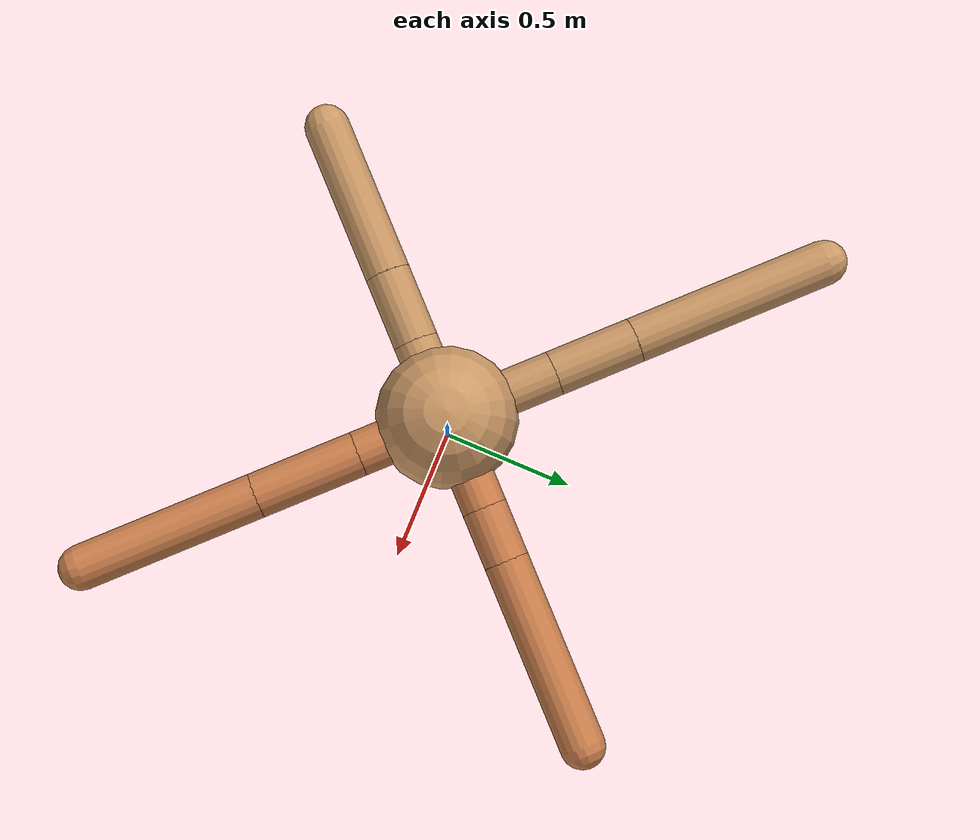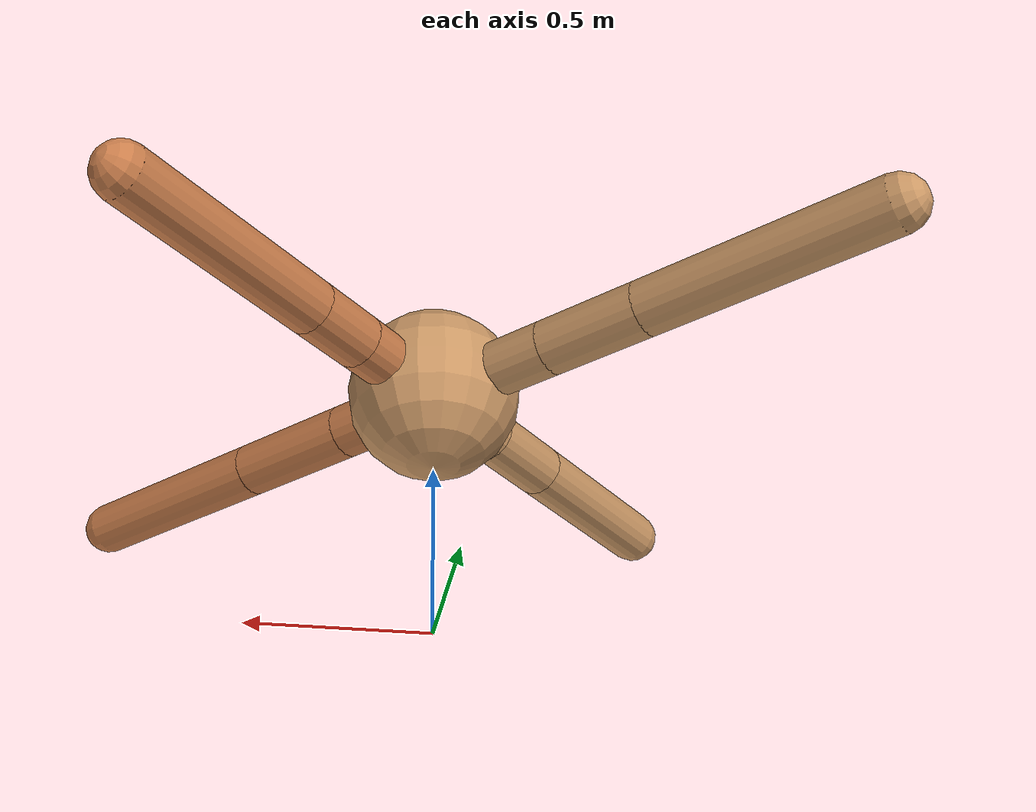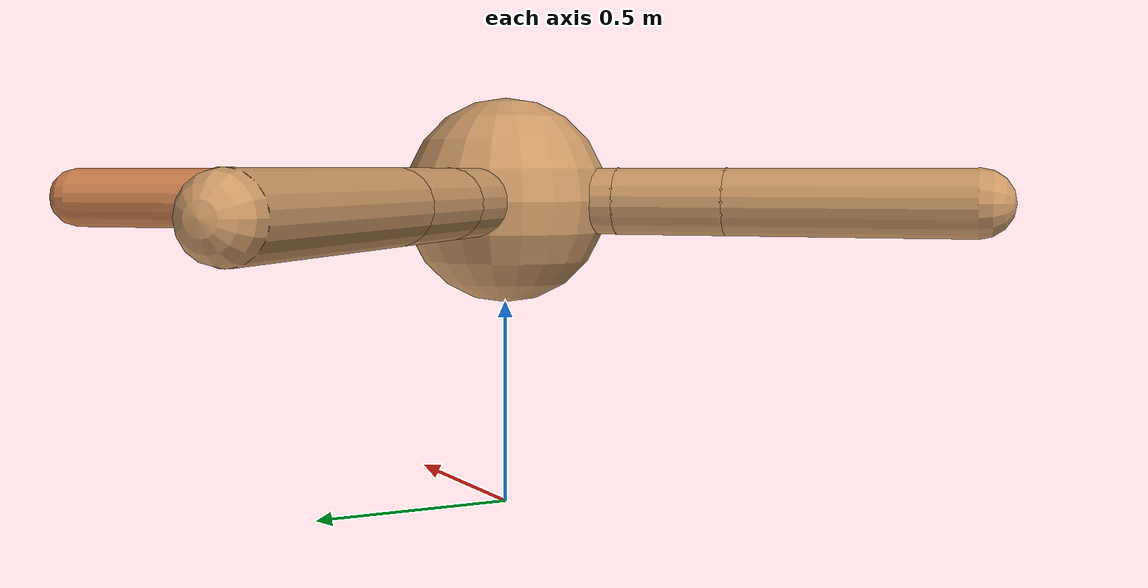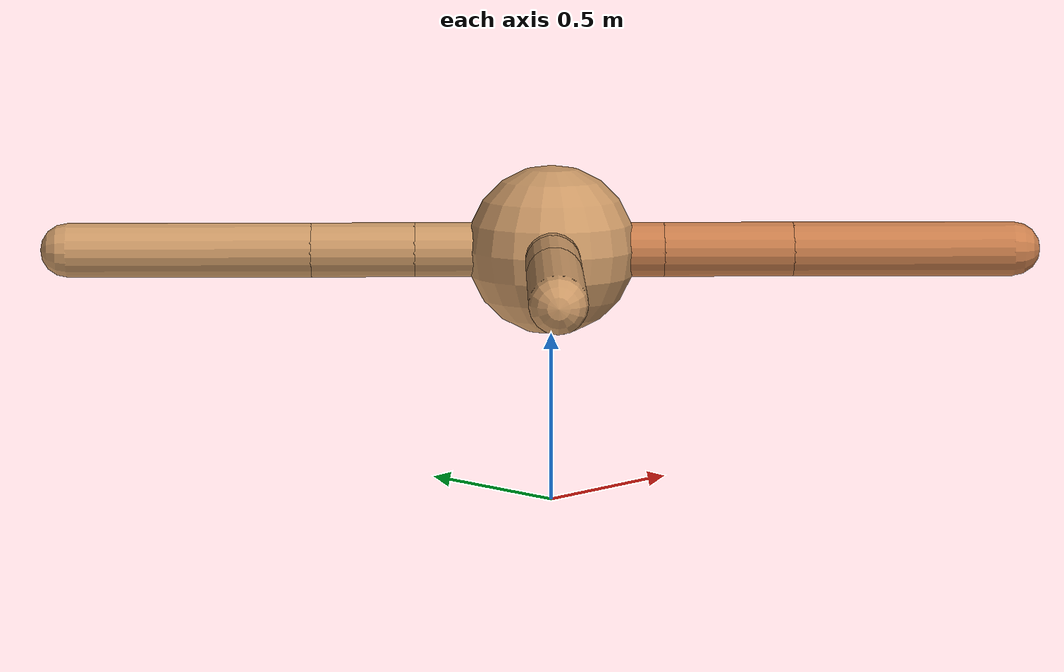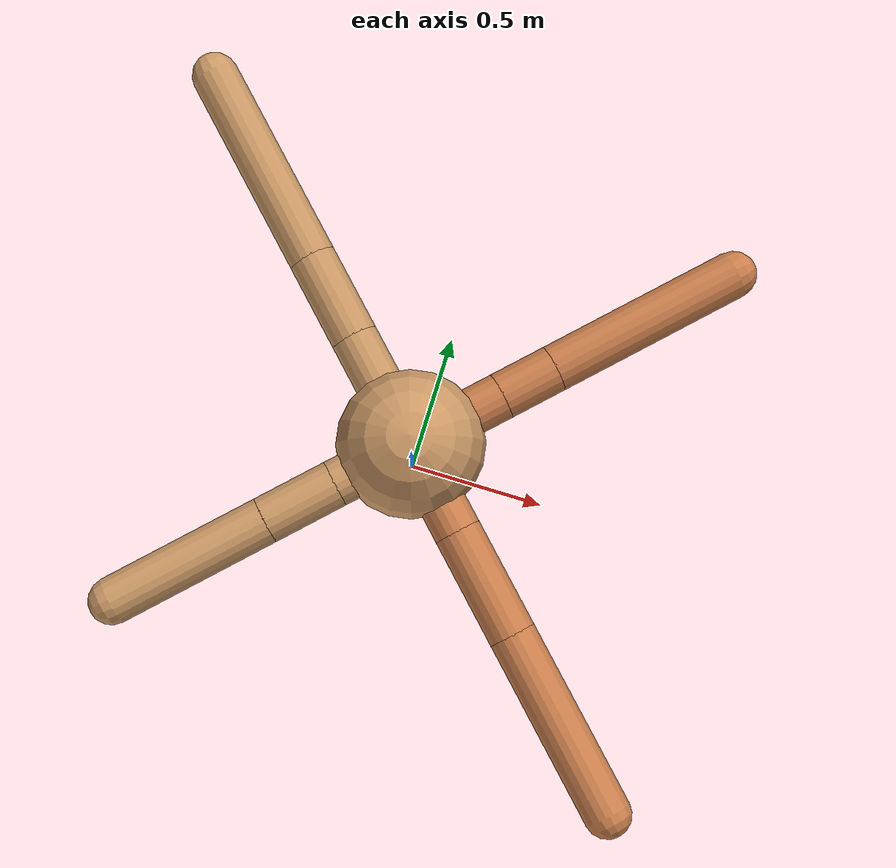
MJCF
<mujoco model="ant">
  <compiler angle="degree" coordinate="local" inertiafromgeom="true" />
  <option integrator="RK4" timestep="0.01" />
  <custom>
    <numeric data="0.0 0.0 0.55 1.0 0.0 0.0 0.0 0.0 1.0 0.0 -1.0 0.0 -1.0 0.0 1.0" name="init_qpos" />
  </custom>
  <default>
    <joint armature="1" damping="1" limited="true" />
    <geom conaffinity="0" condim="3" density="5.0" friction="1.5 0.1 0.1" margin="0.01" rgba="0.8 0.6 0.4 1" />
  </default>
  <worldbody>
    <body name="torso" pos="0 0 0.75">
      <geom name="torso_geom" pos="0 0 0" size="0.25" type="sphere" />

      <body name="front_left_leg" pos="0 0 0">
        <geom fromto="0.0 0.0 0.0 0.24014540985066032 0.24014540985066032 0.0" name="aux_1_geom" size="0.08" type="capsule" rgba=".8 .5 .3 1" />
        <body name="aux_1" pos="0.24014540985066032 0.24014540985066032 0.0">
          <joint axis="0 0 1" name="hip_1" pos="0.0 0.0 0.0" range="-40 40" type="hinge" />
          <geom fromto="0.0 0.0 0.0 0.13991214625577478 0.13991214625577478 0.0" name="left_leg_geom" size="0.08" type="capsule" rgba=".8 .5 .3 1" />
          <body pos="0.13991214625577478 0.13991214625577478 0.0" name="front_left_foot">
            <joint axis="-1 1 0" name="ankle_1" pos="0.0 0.0 0.0" range="30 100" type="hinge" />
            <geom fromto="0.0 0.0 0.0 0.4826696225978321 0.4826696225978321 0.0" name="left_ankle_geom" size="0.08" type="capsule" rgba=".8 .5 .3 1" />
          </body>
        </body>
      </body>
      <body name="front_right_leg" pos="0 0 0">
        <geom fromto="0.0 0.0 0.0 -0.28414914833738647 0.28414914833738647 0.0" name="aux_2_geom" size="0.08" type="capsule" />
        <body name="aux_2" pos="-0.28414914833738647 0.28414914833738647 0.0">
          <joint axis="0 0 1" name="hip_2" pos="0.0 0.0 0.0" range="-40 40" type="hinge" />
          <geom fromto="0.0 0.0 0.0 -0.21485497890764843 0.21485497890764843 0.0" name="right_leg_geom" size="0.08" type="capsule" />
          <body pos="-0.21485497890764843 0.21485497890764843 0.0" name="front_right_foot">
            <joint axis="1 1 0" name="ankle_2" pos="0.0 0.0 0.0" range="-100 -30" type="hinge" />
            <geom fromto="0.0 0.0 0.0 -0.5073562743342203 0.5073562743342203 0.0" name="right_ankle_geom" size="0.08" type="capsule" />
          </body>
        </body>
      </body>
      <body name="left_back_leg" pos="0 0 0">
        <geom fromto="0.0 0.0 0.0 -0.20024486803284633 -0.20024486803284633 0.0" name="aux_3_geom" size="0.08" type="capsule" />
        <body name="aux_3" pos="-0.20024486803284633 -0.20024486803284633 0.0">
          <joint axis="0 0 1" name="hip_3" pos="0.0 0.0 0.0" range="-40 40" type="hinge" />
          <geom fromto="0.0 0.0 0.0 -0.18335669402724264 -0.18335669402724264 0.0" name="back_leg_geom" size="0.08" type="capsule" />
          <body pos="-0.18335669402724264 -0.18335669402724264 0.0" name="left_back_foot">
            <joint axis="-1 1 0" name="ankle_3" pos="0.0 0.0 0.0" range="-100 -30" type="hinge" />
            <geom fromto="0.0 0.0 0.0 -0.3983050802507066 -0.3983050802507066 0.0" name="third_ankle_geom" size="0.08" type="capsule" />
          </body>
        </body>
      </body>
      <body name="right_back_leg" pos="0 0 0">
        <geom fromto="0.0 0.0 0.0 0.23397401284911068 -0.23397401284911068 0.0" name="aux_4_geom" size="0.08" type="capsule" rgba=".8 .5 .3 1" />
        <body name="aux_4" pos="0.23397401284911068 -0.23397401284911068 0.0">
          <joint axis="0 0 1" name="hip_4" pos="0.0 0.0 0.0" range="-40 40" type="hinge" />
          <geom fromto="0.0 0.0 0.0 0.2689762996564629 -0.2689762996564629 0.0" name="rightback_leg_geom" size="0.08" type="capsule" rgba=".8 .5 .3 1" />
          <body pos="0.2689762996564629 -0.2689762996564629 0.0" name="right_back_foot">
            <joint axis="1 1 0" name="ankle_4" pos="0.0 0.0 0.0" range="30 100" type="hinge" />
            <geom fromto="0.0 0.0 0.0 0.4602988583550174 -0.4602988583550174 0.0" name="fourth_ankle_geom" size="0.08" type="capsule" rgba=".8 .5 .3 1" />
          </body>
        </body>
      </body>
    </body>
  </worldbody>
  <actuator>
    <motor ctrllimited="true" ctrlrange="-1.0 1.0" joint="hip_4" gear="150" />
    <motor ctrllimited="true" ctrlrange="-1.0 1.0" joint="ankle_4" gear="150" />
    <motor ctrllimited="true" ctrlrange="-1.0 1.0" joint="hip_1" gear="150" />
    <motor ctrllimited="true" ctrlrange="-1.0 1.0" joint="ankle_1" gear="150" />
    <motor ctrllimited="true" ctrlrange="-1.0 1.0" joint="hip_2" gear="150" />
    <motor ctrllimited="true" ctrlrange="-1.0 1.0" joint="ankle_2" gear="150" />
    <motor ctrllimited="true" ctrlrange="-1.0 1.0" joint="hip_3" gear="150" />
    <motor ctrllimited="true" ctrlrange="-1.0 1.0" joint="ankle_3" gear="150" />
  </actuator>
</mujoco>
